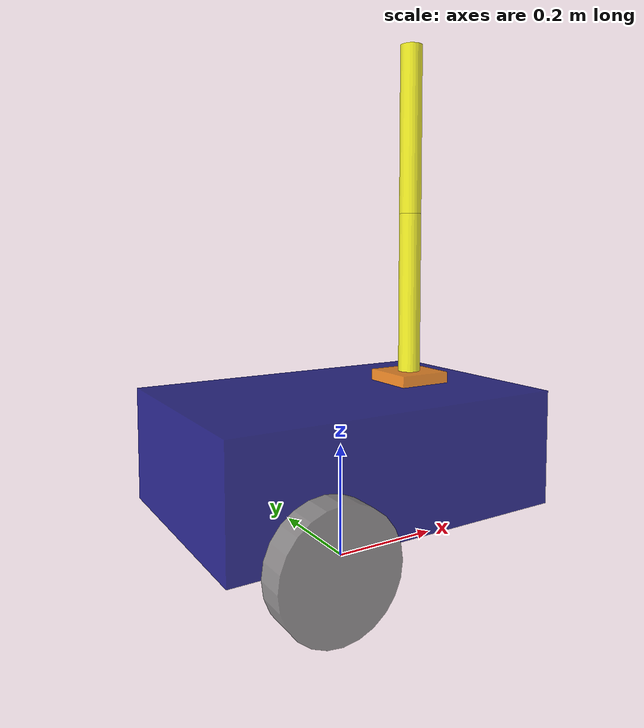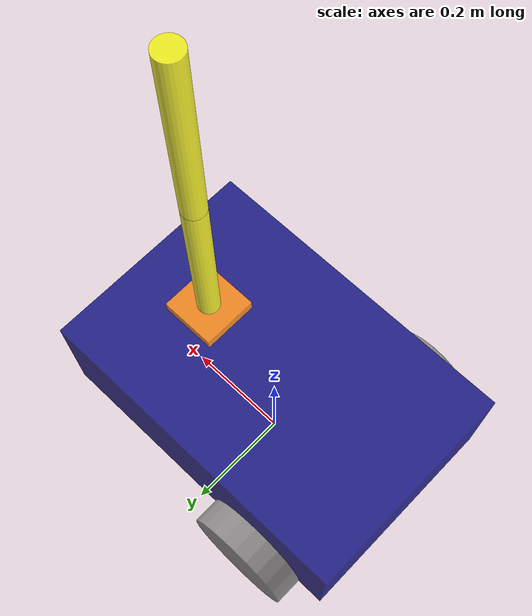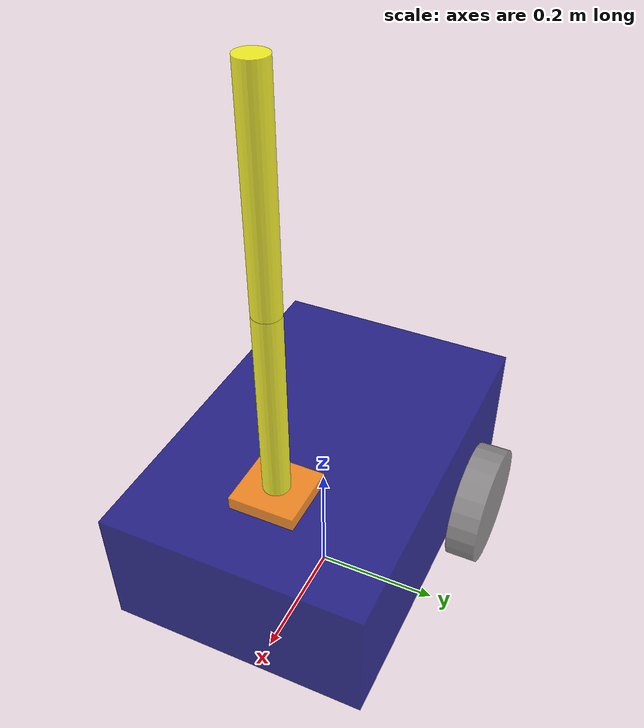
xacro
<?xml version="1.0"?>
<robot name="mobile_robot" xmlns:xacro="http://www.ros.org/wiki/xacro">

    <xacro:include filename ="common_properties.urdf.xacro" />
    <xacro:include filename ="base.urdf.xacro" />
    <xacro:include filename ="base_gazebo.xacro" />
    <xacro:include filename ="arm.xacro" />
    <xacro:include filename ="arm_gazebo.xacro" />

    <joint name="base_arm_joint" type="fixed">
        <parent link="base_link" />

        <child link="arm_base_link" />

        <origin xyz="${base_length / 4.0} 0 ${base_height / 2.0}" rpy="0 0 0" />
    </joint>

</robot>

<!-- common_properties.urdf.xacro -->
<robot xmlns:xacro="http://ros.org/wiki/xacro">

    <!-- Colors definition -->
    <material name="red">
        <color rgba="0.5 0 0 0.8" />
    </material>

    <material name="green">
        <color rgba="0 0.5 0 0.8" />
    </material>

    <material name="blue">
        <color rgba="0 0 0.5 0.8" />
    </material>

    <material name="grey">
        <color rgba="0.5 0.5 0.5 0.8" />
    </material>

    <material name="orange">
        <color rgba="1 0.5 0 0.8" />
    </material>

    <material name="yellow">
        <color rgba="1 1 0 0.8" />
    </material>

    <!-- Box definition -->
    <xacro:macro name="box_inertia" params="m l w h xyz rpy">
        <inertial>
            <origin xyz="${xyz}" rpy="${rpy}" />
            <mass value="${m}" />
            <inertia
                ixx="${(1/12.0) * m * (h * h + l * l)}"
                ixy="0.0"
                ixz="0.0"
                iyy="${(1/12.0) * m * (w * w + l * l)}"
                iyz="0.0"
                izz="${(1/12.0) * m * (w * w + h * h)}" />
        </inertial>
    </xacro:macro>

    <!-- Cylinder definition -->
    <xacro:macro name="cylinder_inertia" params="m r h xyz rpy">
        <inertial>
            <origin xyz="${xyz}" rpy="${rpy}" />
            <mass value="${m}" />
            <inertia
                ixx="${(1/12.0) * m * (3 * r * r + h * h)}"
                ixy="0.0"
                ixz="0.0"
                iyy="${(1/12.0) * m * (3 * r * r + h * h)}"
                iyz="0.0"
                izz="${(1/2.0) * m * r * r}" />
        </inertial>
    </xacro:macro>

    <!-- Sphere definition -->
    <xacro:macro name="sphere_inertia" params="m r xyz rpy">
        <inertial>
            <origin xyz="${xyz}" rpy="${rpy}" />
            <mass value="${m}" />
            <inertia
                ixx="${(2/5.0) * m * r * r}"
                ixy="0.0"
                ixz="0.0"
                iyy="${(2/5.0) * m * r * r}"
                iyz="0.0"
                izz="${(2/5.0) * m * r * r}" />
        </inertial>
    </xacro:macro>

</robot>

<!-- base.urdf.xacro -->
<robot xmlns:xacro="http://www.ros.org/wiki/xacro">

    <!-- Variables definition -->
    <xacro:property name="base_length" value="0.6" />
    <xacro:property name="base_width" value="0.4" />
    <xacro:property name="base_height" value="0.2" />
    <xacro:property name="wheel_radius" value="0.1" />
    <xacro:property name="wheel_length" value="0.05" />
    <xacro:property name="caster_wheel_radius" value="0.05" />

    <!-- Wheel MACRO definition -->
    <xacro:macro name="wheel_link" params="prefix">
        <link name="${prefix}_wheel_link">
            <visual>
                <geometry>
                    <cylinder radius="${wheel_radius}" length="${wheel_length}"/>
                </geometry>

                <origin xyz="0 0 0" rpy="${pi / 2.0} 0 0" />

                <material name="grey" />
            </visual>

            <collision>
                <geometry>
                    <cylinder radius="${wheel_radius}" length="${wheel_length}"/>
                </geometry>

                <origin xyz="0 0 0" rpy="${pi / 2.0} 0 0" />
            </collision>

            <xacro:cylinder_inertia
                m="1.0"
                r="${2 * wheel_radius}"
                h="${2 * wheel_length}"
                xyz="0 0 0"
                rpy="${pi / 2.0} 0 0" />
        </link>
    </xacro:macro>

    <link name="base_footprint" />

    <joint name="base_joint" type="fixed">
        <parent link="base_footprint" />

        <child link="base_link" />

        <origin xyz="0 0 ${base_height}" rpy="0 0 0" />
    </joint>

    <link name="base_link">
        <visual>
            <geometry>
                <box size="${base_length} ${base_width} ${base_height}" />
            </geometry>

            <origin xyz="0 0 0" rpy="0 0 0" />

            <material name="blue" />
        </visual>

        <collision>
            <geometry>
                <box size="${base_length} ${base_width} ${base_height}" />
            </geometry>

            <origin xyz="0 0 0" rpy="0 0 0" />
        </collision>

        <xacro:box_inertia m="5.0"
                           l="${2.0 * base_length}"
                           w="${2.0 * base_width}"
                           h="${2.0 * base_height}"
                           xyz="0 0 0"
                           rpy="0 0 0" />
    </link>

    <joint name="base_right_wheel_joint" type="continuous">
        <parent link="base_link" />

        <child link="right_wheel_link" />

        <origin xyz="${-base_length / 4.0} ${-(base_width / 2.0) + -(wheel_length / 2.0)} ${-base_height / 2.0}"
                rpy="0 0 0" />

        <axis xyz="0 1 0" />
    </joint>

    <xacro:wheel_link prefix ="right" />

    <joint name="base_left_wheel_joint" type="continuous">
        <parent link="base_link" />

        <child link="left_wheel_link" />

        <origin xyz="${-base_length / 4.0} ${(base_width / 2.0) + (wheel_length / 2.0)} ${-base_height / 2.0}"
                rpy="0 0 0" />

        <axis xyz="0 1 0" />
    </joint>

    <xacro:wheel_link prefix ="left" />

    <joint name="base_caster_wheel_joint" type="fixed">
        <parent link="base_link" />

        <child link="caster_wheel_link" />

        <origin xyz="${base_length / 3.0} 0 ${-(base_height / 2.0) + -caster_wheel_radius}" rpy="0 0 0" />
    </joint>

    <link name="caster_wheel_link">
        <visual>
            <geometry>
                <sphere radius="${caster_wheel_radius}" />
            </geometry>

            <origin xyz="0 0 0" rpy="0 0 0" />

            <material name="grey" />
        </visual>

        <collision>
            <geometry>
                <sphere radius="${caster_wheel_radius}" />
            </geometry>

            <origin xyz="0 0 0" rpy="0 0 0" />
        </collision>

        <xacro:sphere_inertia
            m="0.5"
            r="${2.0 * caster_wheel_radius}"
            xyz="0 0 0"
            rpy="0 0 0" />
    </link>

</robot>

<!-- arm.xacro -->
<robot xmlns:xacro="http://www.ros.org/wiki/xacro">

    <xacro:property name="arm_base_length" value="0.1" />
    <xacro:property name="arm_base_width" value="0.1" />
    <xacro:property name="arm_base_height" value="0.02" />
    <xacro:property name="forearm_radius" value="0.02" />
    <xacro:property name="forearm_length" value="0.3" />
    <xacro:property name="hand_radius" value="0.02" />
    <xacro:property name="hand_length" value="0.3" />

    <link name="arm_base_link">
        <visual>
            <origin xyz="0 0 ${arm_base_height / 2.0}" rpy="0 0 0" />
            <geometry>
                <box size="${arm_base_length} ${arm_base_width} ${arm_base_height}" />
            </geometry>
            <material name="orange" />
        </visual>

        <xacro:box_inertia m="0.5"
                           l="${2.0 * arm_base_length}"
                           w="${2.0 * arm_base_width}"
                           h="${2.0 * arm_base_height}"
                           xyz="0 0 ${arm_base_height / 2.0}"
                           rpy="0 0 0" />

        <collision>
            <origin xyz="0 0 ${arm_base_height / 2.0}" rpy="0 0 0" />
            <geometry>
                <box size="${arm_base_length} ${arm_base_width} ${arm_base_height}" />
            </geometry>
        </collision>
    </link>

    <link name="forearm_link">
        <visual>
            <origin xyz="0 0 ${forearm_length / 2}" rpy="0 0 0" />
            <geometry>
                <cylinder radius="${forearm_radius}" length="${forearm_length}" />
            </geometry>
            <material name="yellow" />
        </visual>

        <xacro:cylinder_inertia m="0.3"
                                r="${2.0 * forearm_radius}"
                                h="${2.0 * forearm_length}"
                                xyz="0 0 ${forearm_length / 2}"
                                rpy="0 0 0" />

        <collision>
            <origin xyz="0 0 ${(forearm_length / 2)}" rpy="0 0 0" />
            <geometry>
                <cylinder radius="${forearm_radius}" length="${forearm_length}" />
            </geometry>
        </collision>
    </link>

    <link name="hand_link">
        <visual>
            <origin xyz="0 0 ${hand_length / 2.0}" rpy="0 0 0" />
            <geometry>
                <cylinder radius="${hand_radius}" length="${hand_length}" />
            </geometry>
            <material name="yellow" />
        </visual>

        <xacro:cylinder_inertia m="0.3"
                                r="${2.0 * hand_radius}"
                                h="${2.0 * hand_length}"
                                xyz="0 0 ${hand_length / 2.0}"
                                rpy="0 0 0" />

        <collision>
            <origin xyz="0 0 ${hand_length / 2.0}" rpy="0 0 0" />
            <geometry>
                <cylinder radius="${hand_radius}" length="${hand_length}" />
            </geometry>
        </collision>
    </link>

    <joint name="arm_base_forearm_joint" type="revolute">
        <origin xyz="0 0 ${arm_base_height / 2.0}" rpy="0 0 0"/>
        <axis xyz="0 1 0" />

        <parent link="arm_base_link"/>
        <child link="forearm_link"/>

        <limit effort="100" velocity="100" lower="0" upper="${pi / 2.0}" />
        <dynamics damping="0.1" friction="0.05"/>
    </joint>

    <joint name="forearm_hand_joint" type="revolute">
        <origin xyz="0 0 ${forearm_length}" rpy="0 0 0"/>
        <axis xyz="0 1 0" />

        <parent link="forearm_link"/>
        <child link="hand_link"/>

        <limit effort="100" velocity="100" lower="0" upper="${pi / 2.0}" />
        <dynamics damping="0.1" friction="0.05"/>
    </joint>

</robot>
